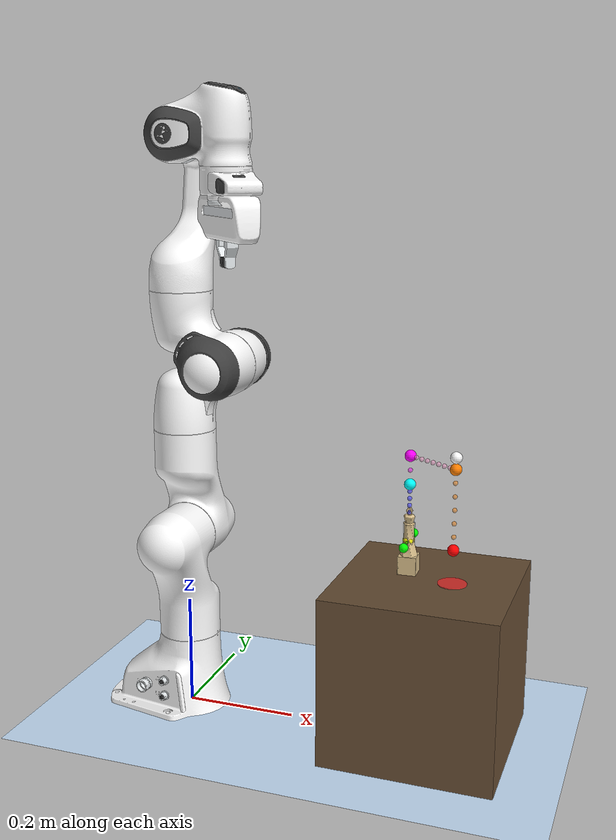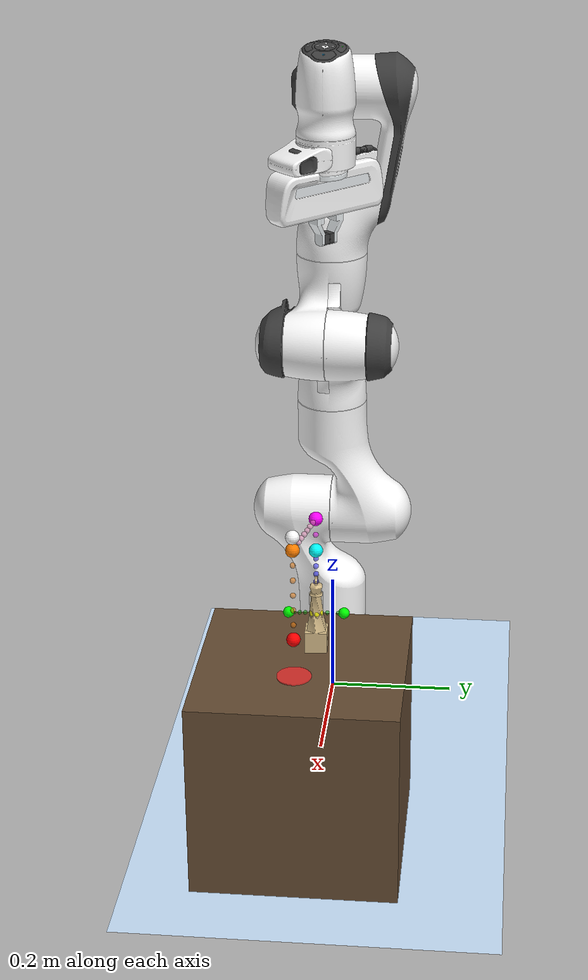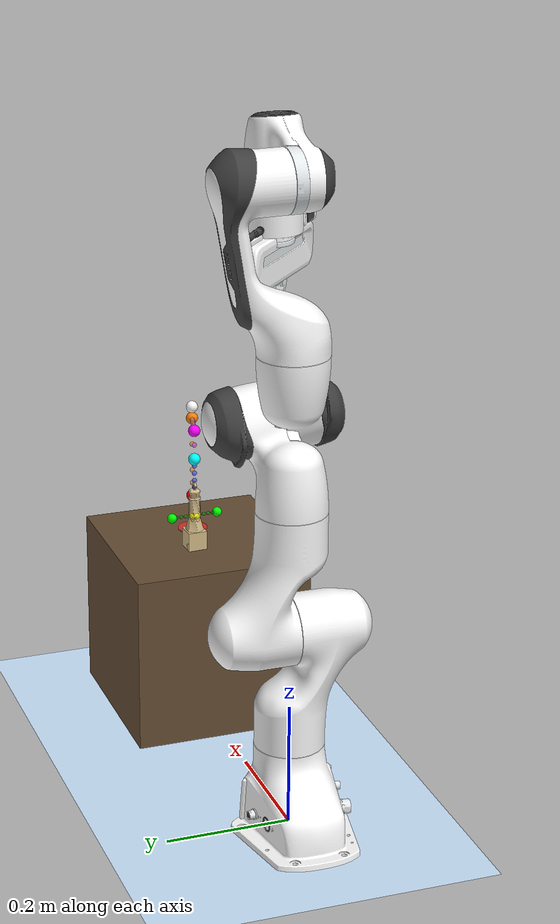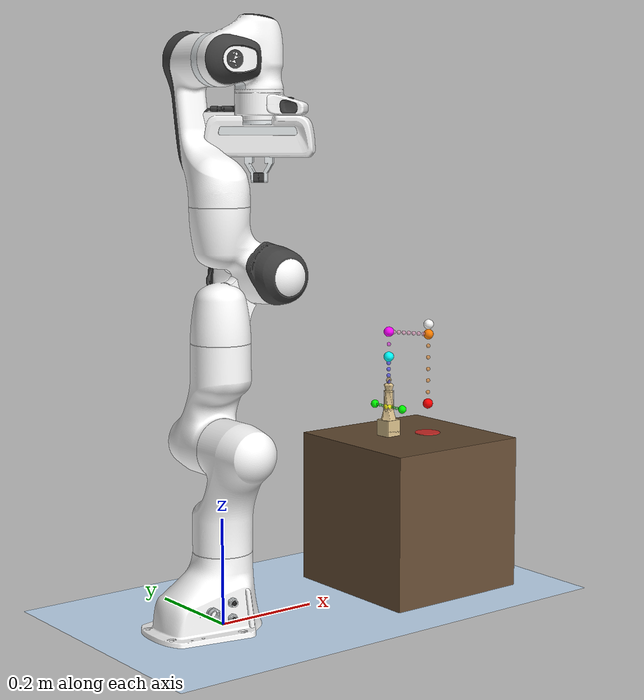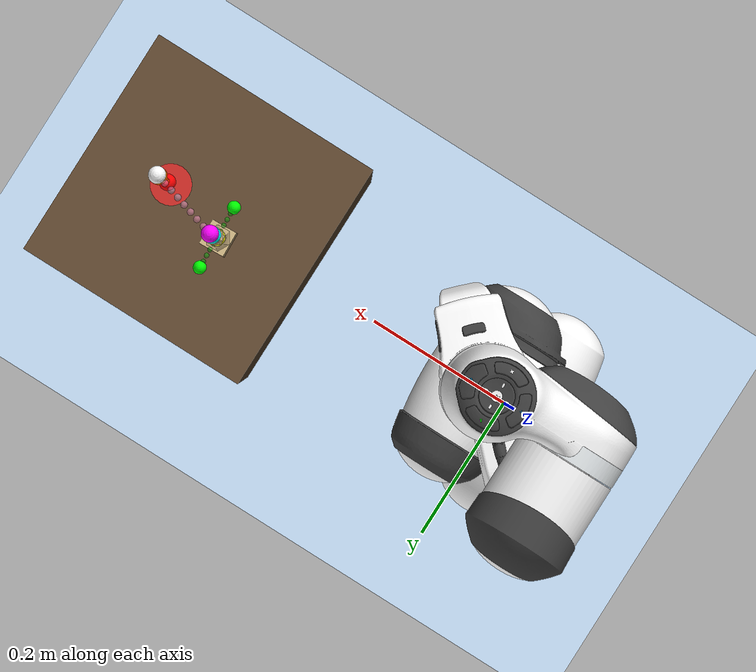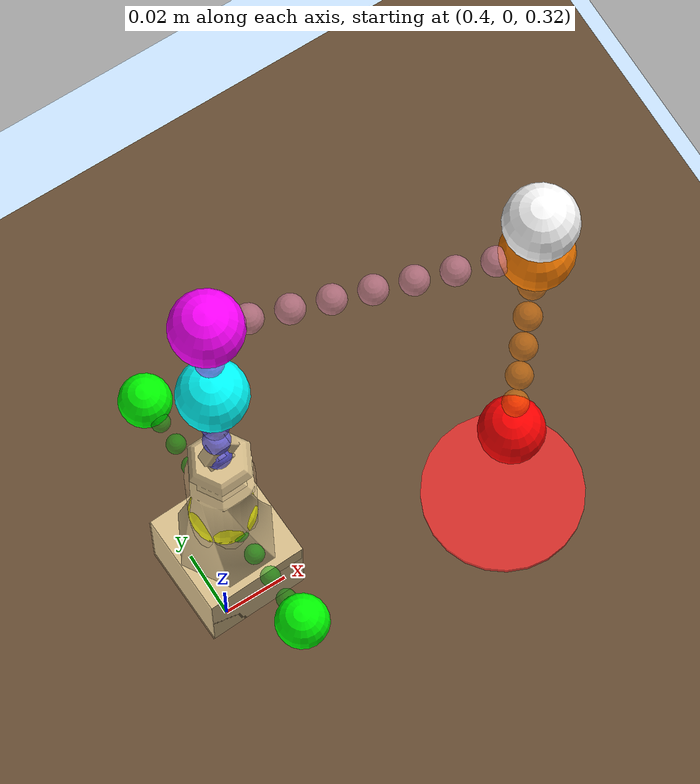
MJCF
<?xml version='1.0' encoding='utf-8'?>
<mujoco model="panda">
  <compiler angle="radian" meshdir="assets" autolimits="true" />

  <option integrator="implicit" />
  <option gravity="0 0 -9.81" />

  <default>
    <default class="panda">
      <material specular="0.5" shininess="0.25" />
      <joint armature="0.1" damping="1" axis="0 0 1" range="-2.8973 2.8973" />
      <general dyntype="none" biastype="none" ctrlrange="-87 87" forcerange="-87 87" />
      <default class="finger">
        <joint axis="0 1 0" type="slide" range="0 0.04" />
      </default>

      <default class="visual">
        <geom type="mesh" contype="0" conaffinity="0" group="2" />
      </default>
      <default class="collision">
        <geom type="mesh" group="3" />
        <default class="fingertip_pad_collision_1">
          <geom type="box" size="0.0085 0.004 0.0085" pos="0 0.0055 0.0445" />
        </default>
        <default class="fingertip_pad_collision_2">
          <geom type="box" size="0.003 0.002 0.003" pos="0.0055 0.002 0.05" />
        </default>
        <default class="fingertip_pad_collision_3">
          <geom type="box" size="0.003 0.002 0.003" pos="-0.0055 0.002 0.05" />
        </default>
        <default class="fingertip_pad_collision_4">
          <geom type="box" size="0.003 0.002 0.0035" pos="0.0055 0.002 0.0395" />
        </default>
        <default class="fingertip_pad_collision_5">
          <geom type="box" size="0.003 0.002 0.0035" pos="-0.0055 0.002 0.0395" />
        </default>
      </default>
    </default>
  </default>

  <asset>
    <material class="panda" name="white" rgba="1 1 1 1" />
    <material class="panda" name="off_white" rgba="0.901961 0.921569 0.929412 1" />
    <material class="panda" name="black" rgba="0.25 0.25 0.25 1" />
    <material class="panda" name="green" rgba="0 1 0 1" />
    <material class="panda" name="light_blue" rgba="0.039216 0.541176 0.780392 1" />

    <mesh name="link0_c" file="link0.stl" />
    <mesh name="link1_c" file="link1.stl" />
    <mesh name="link2_c" file="link2.stl" />
    <mesh name="link3_c" file="link3.stl" />
    <mesh name="link4_c" file="link4.stl" />
    <mesh name="link5_c0" file="link5_collision_0.obj" />
    <mesh name="link5_c1" file="link5_collision_1.obj" />
    <mesh name="link5_c2" file="link5_collision_2.obj" />
    <mesh name="link6_c" file="link6.stl" />
    <mesh name="link7_c" file="link7.stl" />
    <mesh name="hand_c" file="hand.stl" />

    <mesh file="link0_0.obj" />
    <mesh file="link0_1.obj" />
    <mesh file="link0_2.obj" />
    <mesh file="link0_3.obj" />
    <mesh file="link0_4.obj" />
    <mesh file="link0_5.obj" />
    <mesh file="link0_7.obj" />
    <mesh file="link0_8.obj" />
    <mesh file="link0_9.obj" />
    <mesh file="link0_10.obj" />
    <mesh file="link0_11.obj" />
    <mesh file="link1.obj" />
    <mesh file="link2.obj" />
    <mesh file="link3_0.obj" />
    <mesh file="link3_1.obj" />
    <mesh file="link3_2.obj" />
    <mesh file="link3_3.obj" />
    <mesh file="link4_0.obj" />
    <mesh file="link4_1.obj" />
    <mesh file="link4_2.obj" />
    <mesh file="link4_3.obj" />
    <mesh file="link5_0.obj" />
    <mesh file="link5_1.obj" />
    <mesh file="link5_2.obj" />
    <mesh file="link6_0.obj" />
    <mesh file="link6_1.obj" />
    <mesh file="link6_2.obj" />
    <mesh file="link6_3.obj" />
    <mesh file="link6_4.obj" />
    <mesh file="link6_5.obj" />
    <mesh file="link6_6.obj" />
    <mesh file="link6_7.obj" />
    <mesh file="link6_8.obj" />
    <mesh file="link6_9.obj" />
    <mesh file="link6_10.obj" />
    <mesh file="link6_11.obj" />
    <mesh file="link6_12.obj" />
    <mesh file="link6_13.obj" />
    <mesh file="link6_14.obj" />
    <mesh file="link6_15.obj" />
    <mesh file="link6_16.obj" />
    <mesh file="link7_0.obj" />
    <mesh file="link7_1.obj" />
    <mesh file="link7_2.obj" />
    <mesh file="link7_3.obj" />
    <mesh file="link7_4.obj" />
    <mesh file="link7_5.obj" />
    <mesh file="link7_6.obj" />
    <mesh file="link7_7.obj" />
    <mesh file="hand_0.obj" />
    <mesh file="hand_1.obj" />
    <mesh file="hand_2.obj" />
    <mesh file="hand_3.obj" />
    <mesh file="hand_4.obj" />
    <mesh file="finger_0.obj" />
    <mesh file="finger_1.obj" />
  <mesh name="chess_king_mesh" file="chess_king.stl" scale="0.001 0.001 0.001" /></asset>

  <worldbody>
    <light name="top" pos="0 0 2" mode="trackcom" />
    <body name="link0" childclass="panda">
      <inertial mass="0.629769" pos="-0.041018 -0.00014 0.049974" fullinertia="0.00315 0.00388 0.004285 8.2904e-7 0.00015 8.2299e-6" />
      <geom mesh="link0_0" material="off_white" class="visual" />
      <geom mesh="link0_1" material="black" class="visual" />
      <geom mesh="link0_2" material="off_white" class="visual" />
      <geom mesh="link0_3" material="black" class="visual" />
      <geom mesh="link0_4" material="off_white" class="visual" />
      <geom mesh="link0_5" material="black" class="visual" />
      <geom mesh="link0_7" material="white" class="visual" />
      <geom mesh="link0_8" material="white" class="visual" />
      <geom mesh="link0_9" material="black" class="visual" />
      <geom mesh="link0_10" material="off_white" class="visual" />
      <geom mesh="link0_11" material="white" class="visual" />
      <geom mesh="link0_c" class="collision" />
      <body name="link1" pos="0 0 0.333">
        <inertial mass="4.970684" pos="0.003875 0.002081 -0.04762" fullinertia="0.70337 0.70661 0.0091170 -0.00013900 0.0067720 0.019169" />
        <joint name="joint1" />
        <geom material="white" mesh="link1" class="visual" />
        <geom mesh="link1_c" class="collision" />
        <body name="link2" quat="1 -1 0 0">
          <inertial mass="0.646926" pos="-0.003141 -0.02872 0.003495" fullinertia="0.0079620 2.8110e-2 2.5995e-2 -3.925e-3 1.0254e-2 7.04e-4" />
          <joint name="joint2" range="-1.7628 1.7628" />
          <geom material="white" mesh="link2" class="visual" />
          <geom mesh="link2_c" class="collision" />
          <body name="link3" pos="0 -0.316 0" quat="1 1 0 0">
            <joint name="joint3" />
            <inertial mass="3.228604" pos="2.7518e-2 3.9252e-2 -6.6502e-2" fullinertia="3.7242e-2 3.6155e-2 1.083e-2 -4.761e-3 -1.1396e-2 -1.2805e-2" />
            <geom mesh="link3_0" material="white" class="visual" />
            <geom mesh="link3_1" material="white" class="visual" />
            <geom mesh="link3_2" material="white" class="visual" />
            <geom mesh="link3_3" material="black" class="visual" />
            <geom mesh="link3_c" class="collision" />
            <body name="link4" pos="0.0825 0 0" quat="1 1 0 0">
              <inertial mass="3.587895" pos="-5.317e-2 1.04419e-1 2.7454e-2" fullinertia="2.5853e-2 1.9552e-2 2.8323e-2 7.796e-3 -1.332e-3 8.641e-3" />
              <joint name="joint4" range="-3.0718 -0.0698" />
              <geom mesh="link4_0" material="white" class="visual" />
              <geom mesh="link4_1" material="white" class="visual" />
              <geom mesh="link4_2" material="black" class="visual" />
              <geom mesh="link4_3" material="white" class="visual" />
              <geom mesh="link4_c" class="collision" />
              <body name="link5" pos="-0.0825 0.384 0" quat="1 -1 0 0">
                <inertial mass="1.225946" pos="-1.1953e-2 4.1065e-2 -3.8437e-2" fullinertia="3.5549e-2 2.9474e-2 8.627e-3 -2.117e-3 -4.037e-3 2.29e-4" />
                <joint name="joint5" />
                <geom mesh="link5_0" material="black" class="visual" />
                <geom mesh="link5_1" material="white" class="visual" />
                <geom mesh="link5_2" material="white" class="visual" />
                <geom mesh="link5_c0" class="collision" />
                <geom mesh="link5_c1" class="collision" />
                <geom mesh="link5_c2" class="collision" />
                <body name="link6" quat="1 1 0 0">
                  <inertial mass="1.666555" pos="6.0149e-2 -1.4117e-2 -1.0517e-2" fullinertia="1.964e-3 4.354e-3 5.433e-3 1.09e-4 -1.158e-3 3.41e-4" />
                  <joint name="joint6" range="-0.0175 3.7525" />
                  <geom mesh="link6_0" material="off_white" class="visual" />
                  <geom mesh="link6_1" material="white" class="visual" />
                  <geom mesh="link6_2" material="black" class="visual" />
                  <geom mesh="link6_3" material="white" class="visual" />
                  <geom mesh="link6_4" material="white" class="visual" />
                  <geom mesh="link6_5" material="white" class="visual" />
                  <geom mesh="link6_6" material="white" class="visual" />
                  <geom mesh="link6_7" material="light_blue" class="visual" />
                  <geom mesh="link6_8" material="light_blue" class="visual" />
                  <geom mesh="link6_9" material="black" class="visual" />
                  <geom mesh="link6_10" material="black" class="visual" />
                  <geom mesh="link6_11" material="white" class="visual" />
                  <geom mesh="link6_12" material="green" class="visual" />
                  <geom mesh="link6_13" material="white" class="visual" />
                  <geom mesh="link6_14" material="black" class="visual" />
                  <geom mesh="link6_15" material="black" class="visual" />
                  <geom mesh="link6_16" material="white" class="visual" />
                  <geom mesh="link6_c" class="collision" />
                  <body name="link7" pos="0.088 0 0" quat="1 1 0 0">
                    <inertial mass="7.35522e-01" pos="1.0517e-2 -4.252e-3 6.1597e-2" fullinertia="1.2516e-2 1.0027e-2 4.815e-3 -4.28e-4 -1.196e-3 -7.41e-4" />
                    <joint name="joint7" />
                    <geom mesh="link7_0" material="white" class="visual" />
                    <geom mesh="link7_1" material="black" class="visual" />
                    <geom mesh="link7_2" material="black" class="visual" />
                    <geom mesh="link7_3" material="black" class="visual" />
                    <geom mesh="link7_4" material="black" class="visual" />
                    <geom mesh="link7_5" material="black" class="visual" />
                    <geom mesh="link7_6" material="black" class="visual" />
                    <geom mesh="link7_7" material="white" class="visual" />
                    <geom mesh="link7_c" class="collision" />
                    <body name="hand" pos="0 0 0.107" quat="0.9238795 0 0 -0.3826834">
                      <inertial mass="0.73" pos="-0.01 0 0.03" diaginertia="0.001 0.0025 0.0017" />
                      <geom mesh="hand_0" material="off_white" class="visual" />
                      <geom mesh="hand_1" material="black" class="visual" />
                      <geom mesh="hand_2" material="black" class="visual" />
                      <geom mesh="hand_3" material="white" class="visual" />
                      <geom mesh="hand_4" material="off_white" class="visual" />
                      <geom mesh="hand_c" class="collision" />
                      <body name="left_finger" pos="0 0 0.0584">
                        <inertial mass="0.015" pos="0 0 0" diaginertia="2.375e-6 2.375e-6 7.5e-7" />
                        <joint name="finger_joint1" class="finger" />
                        <geom mesh="finger_0" material="off_white" class="visual" />
                        <geom mesh="finger_1" material="black" class="visual" />
                        <geom mesh="finger_0" class="collision" />
                        <geom class="fingertip_pad_collision_1" />
                        <geom class="fingertip_pad_collision_2" />
                        <geom class="fingertip_pad_collision_3" />
                        <geom class="fingertip_pad_collision_4" />
                        <geom class="fingertip_pad_collision_5" />
                      </body>
                      <body name="right_finger" pos="0 0 0.0584" quat="0 0 0 1">
                        <inertial mass="0.015" pos="0 0 0" diaginertia="2.375e-6 2.375e-6 7.5e-7" />
                        <joint name="finger_joint2" class="finger" />
                        <geom mesh="finger_0" material="off_white" class="visual" />
                        <geom mesh="finger_1" material="black" class="visual" />
                        <geom mesh="finger_0" class="collision" />
                        <geom class="fingertip_pad_collision_1" />
                        <geom class="fingertip_pad_collision_2" />
                        <geom class="fingertip_pad_collision_3" />
                        <geom class="fingertip_pad_collision_4" />
                        <geom class="fingertip_pad_collision_5" />
                      </body>
                    </body>
                  </body>
                </body>
              </body>
            </body>
          </body>
        </body>
      </body>
    </body>
    <geom name="ground" type="plane" size="3 3 0.1" rgba="0.8 0.9 1 1" />

  <geom name="table_0" type="box" size="0.15 0.15 0.15" pos="0.45 0.0 0.15" rgba="0.4 0.3 0.2 1" friction="1.5 0.5 0.1" contype="1" conaffinity="1" /><body name="ChessPiece_0" pos="0.3947241375913748 -0.0005065586830256929 0.302" quat="0.9997627967815235 0.0 0.0 0.021779581529177784"><freejoint name="chess_piece_joint_0" /><geom name="chess_piece_visual_0" type="mesh" mesh="chess_king_mesh" rgba="0.85 0.75 0.55 1" contype="0" conaffinity="0" mass="0" /><geom name="chess_piece_base_col_0" type="box" size="0.016 0.016 0.016" pos="0.016 0.016 0.016" rgba="0.85 0.75 0.55 0.3" density="500" friction="1.5 1.5 0.5" contype="1" conaffinity="1" condim="4" /><geom name="chess_piece_stem_col_0" type="cylinder" size="0.010 0.030" pos="0.016 0.016 0.060" rgba="0.85 0.75 0.55 0.2" density="500" friction="1.5 0.5 0.1" contype="1" conaffinity="1" condim="4" /></body><geom name="marker_finger_left" type="sphere" size="0.008" pos="0.4082702238669908 0.0561370953886876 0.35975316111611827" rgba="0 1 0 0.9" contype="0" conaffinity="0" /><geom name="marker_finger_right" type="sphere" size="0.008" pos="0.4117541303228672 -0.023787008583810602 0.35975316111611827" rgba="0 1 0 0.9" contype="0" conaffinity="0" /><geom name="marker_grasp_center" type="sphere" size="0.010" pos="0.410012177094929 0.0161750434024385 0.35975316111611827" rgba="1 1 0 0.9" contype="0" conaffinity="0" /><geom name="marker_pre_grasp" type="sphere" size="0.010" pos="0.410012177094929 0.0161750434024385 0.4597531611161183" rgba="0 1 1 0.9" contype="0" conaffinity="0" /><geom name="marker_lift" type="sphere" size="0.010" pos="0.410012177094929 0.0161750434024385 0.5097531611161182" rgba="1 0 1 0.9" contype="0" conaffinity="0" /><geom name="marker_descent_1" type="sphere" size="0.004" pos="0.410012177094929 0.0161750434024385 0.4472531611161183" rgba="0.3 0.3 1 0.7" contype="0" conaffinity="0" /><geom name="marker_descent_2" type="sphere" size="0.004" pos="0.410012177094929 0.0161750434024385 0.4347531611161183" rgba="0.3 0.3 1 0.7" contype="0" conaffinity="0" /><geom name="marker_descent_3" type="sphere" size="0.004" pos="0.410012177094929 0.0161750434024385 0.42225316111611827" rgba="0.3 0.3 1 0.7" contype="0" conaffinity="0" /><geom name="marker_descent_4" type="sphere" size="0.004" pos="0.410012177094929 0.0161750434024385 0.40975316111611826" rgba="0.3 0.3 1 0.7" contype="0" conaffinity="0" /><geom name="marker_descent_5" type="sphere" size="0.004" pos="0.410012177094929 0.0161750434024385 0.3972531611161183" rgba="0.3 0.3 1 0.7" contype="0" conaffinity="0" /><geom name="marker_descent_6" type="sphere" size="0.004" pos="0.410012177094929 0.0161750434024385 0.3847531611161183" rgba="0.3 0.3 1 0.7" contype="0" conaffinity="0" /><geom name="marker_descent_7" type="sphere" size="0.004" pos="0.410012177094929 0.0161750434024385 0.3722531611161183" rgba="0.3 0.3 1 0.7" contype="0" conaffinity="0" /><geom name="marker_ascent_1" type="sphere" size="0.004" pos="0.410012177094929 0.0161750434024385 0.38475316111611824" rgba="1 0 1 0.5" contype="0" conaffinity="0" /><geom name="marker_ascent_2" type="sphere" size="0.004" pos="0.410012177094929 0.0161750434024385 0.40975316111611826" rgba="1 0 1 0.5" contype="0" conaffinity="0" /><geom name="marker_ascent_3" type="sphere" size="0.004" pos="0.410012177094929 0.0161750434024385 0.4347531611161183" rgba="1 0 1 0.5" contype="0" conaffinity="0" /><geom name="marker_ascent_4" type="sphere" size="0.004" pos="0.410012177094929 0.0161750434024385 0.45975316111611825" rgba="1 0 1 0.5" contype="0" conaffinity="0" /><geom name="marker_ascent_5" type="sphere" size="0.004" pos="0.410012177094929 0.0161750434024385 0.4847531611161182" rgba="1 0 1 0.5" contype="0" conaffinity="0" /><geom name="marker_faxis_l_1" type="sphere" size="0.003" pos="0.40966378644934137 0.02416745379968832 0.35975316111611827" rgba="0 0.7 0 0.5" contype="0" conaffinity="0" /><geom name="marker_faxis_r_1" type="sphere" size="0.003" pos="0.4103605677405166 0.00818263300518868 0.35975316111611827" rgba="0 0.7 0 0.5" contype="0" conaffinity="0" /><geom name="marker_faxis_l_2" type="sphere" size="0.003" pos="0.4093153958037537 0.03215986419693814 0.35975316111611827" rgba="0 0.7 0 0.5" contype="0" conaffinity="0" /><geom name="marker_faxis_r_2" type="sphere" size="0.003" pos="0.4107089583861043 0.00019022260793885928 0.35975316111611827" rgba="0 0.7 0 0.5" contype="0" conaffinity="0" /><geom name="marker_faxis_l_3" type="sphere" size="0.003" pos="0.4089670051581661 0.040152274594187964 0.35975316111611827" rgba="0 0.7 0 0.5" contype="0" conaffinity="0" /><geom name="marker_faxis_r_3" type="sphere" size="0.003" pos="0.4110573490316919 -0.0078021877893109624 0.35975316111611827" rgba="0 0.7 0 0.5" contype="0" conaffinity="0" /><geom name="marker_faxis_l_4" type="sphere" size="0.003" pos="0.4086186145125784 0.04814468499143778 0.35975316111611827" rgba="0 0.7 0 0.5" contype="0" conaffinity="0" /><geom name="marker_faxis_r_4" type="sphere" size="0.003" pos="0.41140573967727956 -0.01579459818656078 0.35975316111611827" rgba="0 0.7 0 0.5" contype="0" conaffinity="0" /><geom name="marker_drop_target" type="cylinder" size="0.025 0.001" pos="0.4927947319074651 -0.007426314311507056 0.301" rgba="1 0.2 0.2 0.8" contype="0" conaffinity="0" /><geom name="marker_pre_place" type="sphere" size="0.010" pos="0.4927947319074651 -0.007426314311507056 0.49999999999999994" rgba="1 0.5 0 0.9" contype="0" conaffinity="0" /><geom name="marker_place" type="sphere" size="0.010" pos="0.4927947319074651 -0.007426314311507056 0.36" rgba="1 0 0 0.9" contype="0" conaffinity="0" /><geom name="marker_retreat" type="sphere" size="0.010" pos="0.4927947319074651 -0.007426314311507056 0.52" rgba="1 1 1 0.9" contype="0" conaffinity="0" /><geom name="marker_transfer_1" type="sphere" size="0.004" pos="0.420359996446496 0.013224873688195304 0.5085340159766034" rgba="1 0.6 0.8 0.5" contype="0" conaffinity="0" /><geom name="marker_transfer_2" type="sphere" size="0.004" pos="0.430707815798063 0.01027470397395211 0.5073148708370887" rgba="1 0.6 0.8 0.5" contype="0" conaffinity="0" /><geom name="marker_transfer_3" type="sphere" size="0.004" pos="0.44105563514963003 0.007324534259708916 0.5060957256975739" rgba="1 0.6 0.8 0.5" contype="0" conaffinity="0" /><geom name="marker_transfer_4" type="sphere" size="0.004" pos="0.451403454501197 0.004374364545465722 0.5048765805580591" rgba="1 0.6 0.8 0.5" contype="0" conaffinity="0" /><geom name="marker_transfer_5" type="sphere" size="0.004" pos="0.46175127385276404 0.0014241948312225267 0.5036574354185444" rgba="1 0.6 0.8 0.5" contype="0" conaffinity="0" /><geom name="marker_transfer_6" type="sphere" size="0.004" pos="0.4720990932043311 -0.0015259748830206664 0.5024382902790295" rgba="1 0.6 0.8 0.5" contype="0" conaffinity="0" /><geom name="marker_transfer_7" type="sphere" size="0.004" pos="0.4824469125558981 -0.004476144597263861 0.5012191451395147" rgba="1 0.6 0.8 0.5" contype="0" conaffinity="0" /><geom name="marker_place_desc_1" type="sphere" size="0.004" pos="0.4927947319074651 -0.007426314311507056 0.4766666666666666" rgba="1 0.5 0 0.5" contype="0" conaffinity="0" /><geom name="marker_place_desc_2" type="sphere" size="0.004" pos="0.4927947319074651 -0.007426314311507056 0.4533333333333333" rgba="1 0.5 0 0.5" contype="0" conaffinity="0" /><geom name="marker_place_desc_3" type="sphere" size="0.004" pos="0.4927947319074651 -0.007426314311507056 0.42999999999999994" rgba="1 0.5 0 0.5" contype="0" conaffinity="0" /><geom name="marker_place_desc_4" type="sphere" size="0.004" pos="0.4927947319074651 -0.007426314311507056 0.4066666666666666" rgba="1 0.5 0 0.5" contype="0" conaffinity="0" /><geom name="marker_place_desc_5" type="sphere" size="0.004" pos="0.4927947319074651 -0.007426314311507056 0.3833333333333333" rgba="1 0.5 0 0.5" contype="0" conaffinity="0" /><geom name="marker_gz_0" type="sphere" size="0.002" pos="0.410012177094929 0.0161750434024385 0.3797531611161183" rgba="0.5 0.5 0.5 0.6" contype="0" conaffinity="0" /><geom name="marker_gz_1" type="sphere" size="0.002" pos="0.410012177094929 0.0161750434024385 0.3697531611161183" rgba="0.5 0.5 0.5 0.6" contype="0" conaffinity="0" /><geom name="marker_gz_2" type="sphere" size="0.002" pos="0.410012177094929 0.0161750434024385 0.35975316111611827" rgba="0.5 0.5 0.5 0.6" contype="0" conaffinity="0" /><geom name="marker_gz_3" type="sphere" size="0.002" pos="0.410012177094929 0.0161750434024385 0.34975316111611826" rgba="0.5 0.5 0.5 0.6" contype="0" conaffinity="0" /><geom name="marker_gz_4" type="sphere" size="0.002" pos="0.410012177094929 0.0161750434024385 0.33975316111611825" rgba="0.5 0.5 0.5 0.6" contype="0" conaffinity="0" /></worldbody>

  <tendon>
    <fixed name="split">
      <joint joint="finger_joint1" coef="0.5" />
      <joint joint="finger_joint2" coef="0.5" />
    </fixed>
  </tendon>

  <equality>
    <joint joint1="finger_joint1" joint2="finger_joint2" solimp="0.95 0.99 0.001" solref="0.005 1" />
  </equality>

  <actuator>
    <general class="panda" name="actuator1" joint="joint1" gainprm="1" />
    <general class="panda" name="actuator2" joint="joint2" gainprm="1" />
    <general class="panda" name="actuator3" joint="joint3" gainprm="1" />
    <general class="panda" name="actuator4" joint="joint4" gainprm="1" />
    <general class="panda" name="actuator5" joint="joint5" gainprm="1" ctrlrange="-12 12" forcerange="-12 12" />
    <general class="panda" name="actuator6" joint="joint6" gainprm="1" forcerange="-12 12" ctrlrange="-12 12" />
    <general class="panda" name="actuator7" joint="joint7" gainprm="1" ctrlrange="-12 12" forcerange="-12 12" />
    <position name="actuator8" tendon="split" ctrlrange="0.005 0.04" kp="400" />
  </actuator>

</mujoco>
